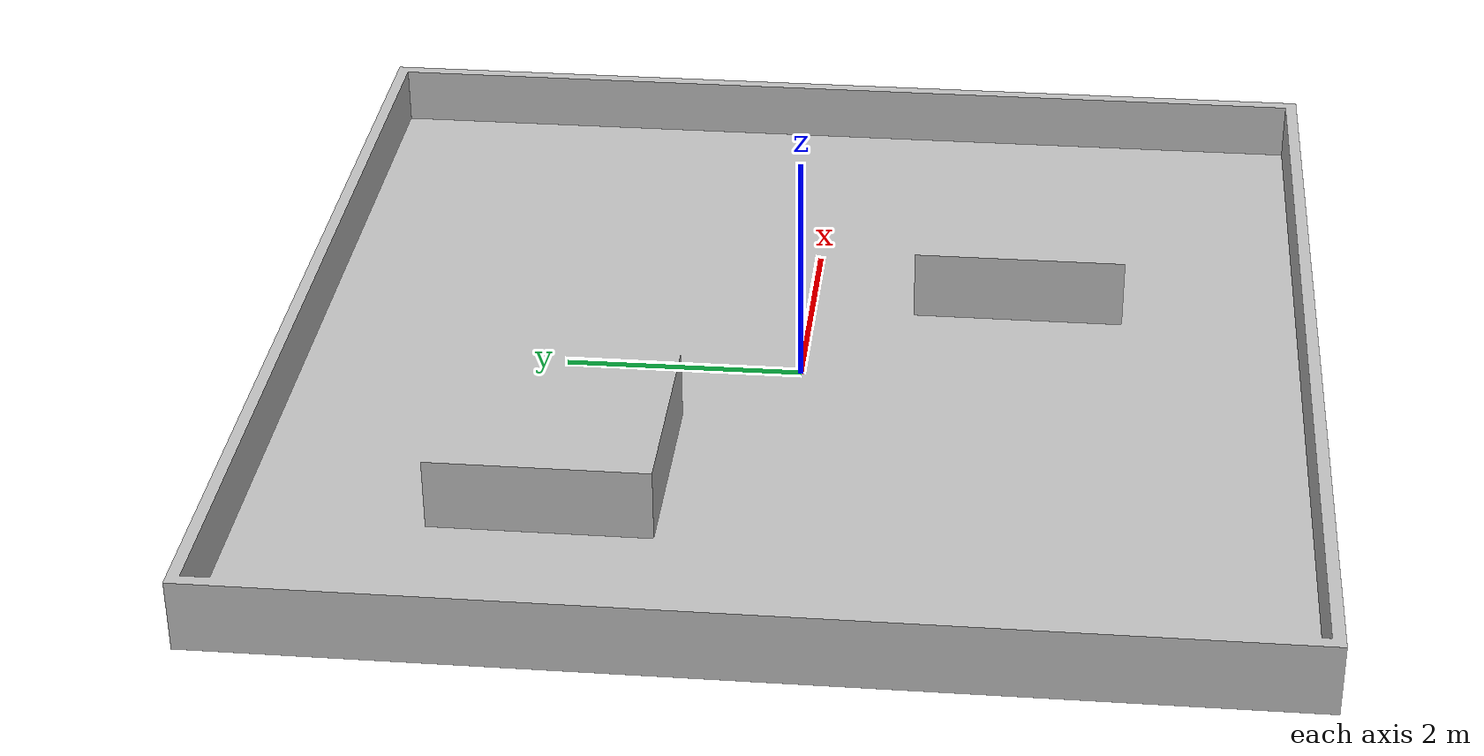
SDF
<?xml version="1.0" ?>
<sdf version="1.8">
  <world name="sim_room">
    <static>true</static>
    <physics name="1ms" type="ignored">
      <max_step_size>0.001</max_step_size>
      <real_time_factor>1.0</real_time_factor>
    </physics>
    <plugin
      filename="libignition-gazebo-physics-system.so"
      name="ignition::gazebo::systems::Physics">
    </plugin>
    <plugin
      filename="libignition-gazebo-user-commands-system.so"
      name="ignition::gazebo::systems::UserCommands">
    </plugin>
    <plugin
      filename="libignition-gazebo-scene-broadcaster-system.so"
      name="ignition::gazebo::systems::SceneBroadcaster">
    </plugin>
    <plugin
      filename="ignition-gazebo-contact-system"
      name="gz::sim::systems::Contact">
    </plugin>
    <plugin
      filename="ignition-gazebo-forcetorque-system"
      name="ignition::gazebo::systems::ForceTorque">
    </plugin>
    <plugin
      filename="libignition-gazebo-imu-system.so"
      name="ignition::gazebo::systems::Imu">
    </plugin>
    <plugin
      filename="libignition-gazebo-sensors-system.so"
      name="ignition::gazebo::systems::Sensors">
      <render_engine>ogre2</render_engine>
    </plugin>

    <!--light-->
    <light type="directional" name="sun">
      <cast_shadows>true</cast_shadows>
      <pose>0 0 10 0 0 0</pose>
      <diffuse>0.8 0.8 0.8 1</diffuse>
      <specular>0.2 0.2 0.2 1</specular>
      <attenuation>
        <range>1000</range>
        <constant>0.9</constant>
        <linear>0.01</linear>
        <quadratic>0.001</quadratic>
      </attenuation>
      <direction>-0.5 0.1 -0.9</direction>
    </light>

    <include>
      <uri>model://sim_room</uri>
    </include>
  </world>
</sdf>

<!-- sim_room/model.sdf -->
<sdf version="1.8">
    <model name="sim_room">
        <static>true</static>
        <link name="base_link">
            <visual name="base_link_visual">
                <pose>0 0 0 0 0 0</pose>
                <geometry>
                    <mesh>
                        <uri>model://sim_room/meshes/base_link.STL</uri>
                    </mesh>
                </geometry>
                <material>
                    <ambient>0.75 0.75 0.75 1.0</ambient>
                    <diffuse>0.75 0.75 0.75 1.0</diffuse>
                </material>
            </visual>
            <collision name="base_link_collision">
                <pose>0 0 0 0 0 0</pose>
                <geometry>
                    <mesh>
                        <uri>model://sim_room/meshes/base_link.STL</uri>
                    </mesh>
                </geometry>
            </collision>
        </link>
    </model>
</sdf>
